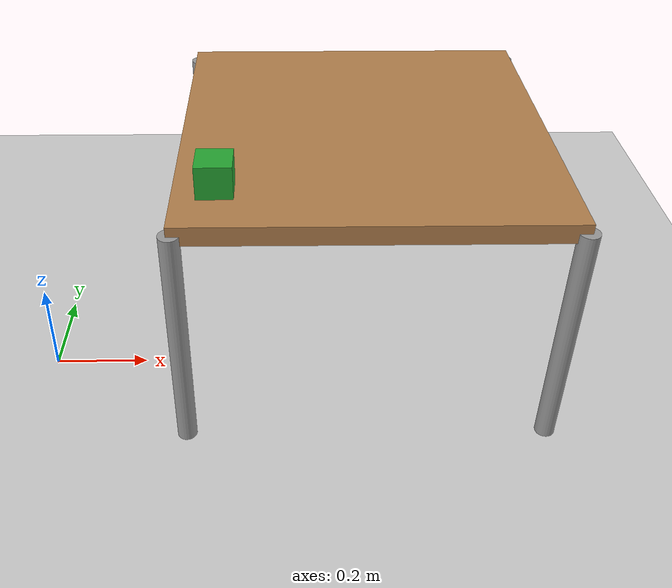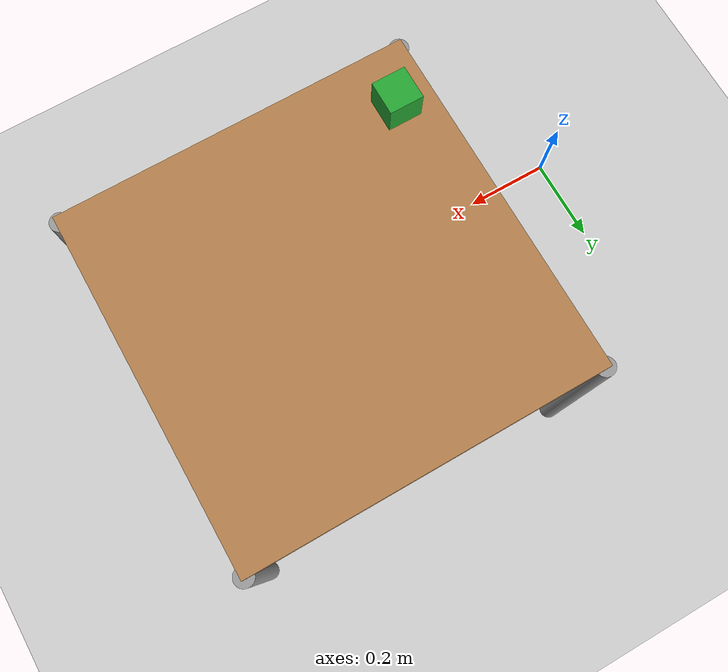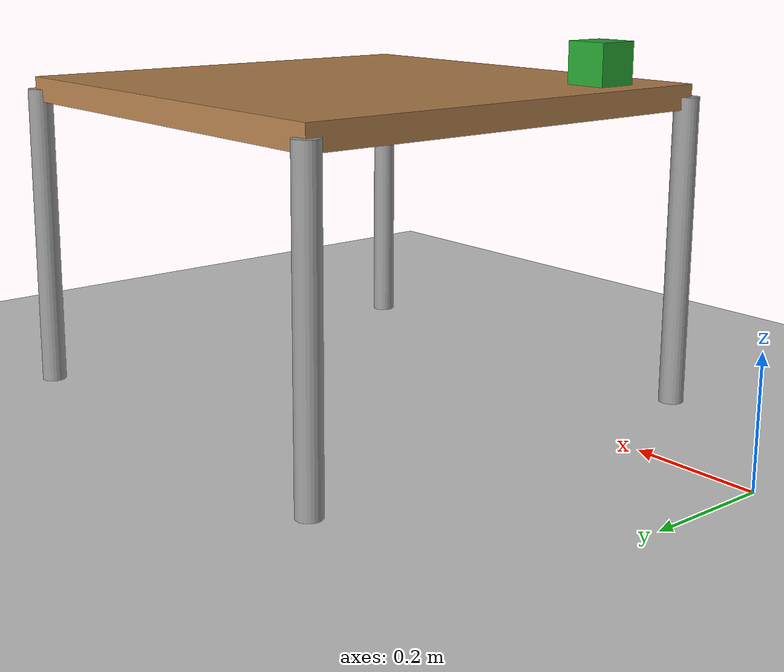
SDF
<sdf version="1.7">
 <world name="default">
  <plugin name="gazebo_ros_state" filename="libgazebo_ros_state.so"/>
  <light name="sun" type="directional">
   <pose>0 0 10 0 -0 0</pose>
   <diffuse>0.8 0.8 0.8 1</diffuse>
   <specular>0.2 0.2 0.2 1</specular>
   <attenuation>
    <range>1000</range>
    <constant>0.9</constant>
    <linear>0.01</linear>
    <quadratic>0.001</quadratic>
   </attenuation>
   <direction>-0.5 0.1 -0.9</direction>
   <spot><inner_angle>0</inner_angle><outer_angle>0</outer_angle><falloff>0</falloff></spot>
  </light>
  <model name="ground_plane">
   <static>1</static>
   <link name="link">
    <collision name="collision">
     <geometry><plane><normal>0 0 1</normal><size>100 100</size></plane></geometry>
     <surface><friction><ode><mu>100</mu><mu2>50</mu2></ode></friction></surface>
    </collision>
    <visual name="visual">
     <cast_shadows>0</cast_shadows>
     <geometry><plane><normal>0 0 1</normal><size>100 100</size></plane></geometry>
     <material>
      <script><uri>file://media/materials/scripts/gazebo.material</uri><name>Gazebo/Grey</name></script>
     </material>
    </visual>
   </link>
  </model>
  <gravity>0 0 -9.8</gravity>
  <magnetic_field>6e-06 2.3e-05 -4.2e-05</magnetic_field>
  <atmosphere type="adiabatic"/>
  <physics type="ode">
   <max_step_size>0.001</max_step_size>
   <real_time_factor>1</real_time_factor>
   <real_time_update_rate>1000</real_time_update_rate>
  </physics>
  <scene><ambient>0.4 0.4 0.4 1</ambient><background>0.7 0.7 0.7 1</background><shadows>1</shadows></scene>
  <audio><device>default</device></audio>
  <spherical_coordinates>
   <surface_model>EARTH_WGS84</surface_model>
   <latitude_deg>0</latitude_deg>
   <longitude_deg>0</longitude_deg>
   <elevation>0</elevation>
   <heading_deg>0</heading_deg>
  </spherical_coordinates>
  <model name="table">
   <static>1</static>
   <link name="link">
    <collision name="surface">
     <pose>0 0 0.5 0 -0 0</pose>
     <geometry><box><size>0.75 0.75 0.04</size></box></geometry>
    </collision>
    <visual name="visual1">
     <pose>0 0 0.5 0 -0 0</pose>
     <geometry><box><size>0.75 0.75 0.04</size></box></geometry>
     <material>
      <script><uri>file://media/materials/scripts/gazebo.material</uri><name>Gazebo/Wood</name></script>
     </material>
    </visual>
    <collision name="front_left_leg">
     <pose>0.37 0.37 0.25 0 -0 0</pose>
     <geometry><cylinder><radius>0.02</radius><length>0.5</length></cylinder></geometry>
    </collision>
    <visual name="front_left_leg">
     <pose>0.37 0.37 0.25 0 -0 0</pose>
     <geometry><cylinder><radius>0.02</radius><length>0.5</length></cylinder></geometry>
     <material>
      <script><uri>file://media/materials/scripts/gazebo.material</uri><name>Gazebo/Grey</name></script>
     </material>
    </visual>
    <collision name="front_right_leg">
     <pose>0.37 -0.37 0.25 0 -0 0</pose>
     <geometry><cylinder><radius>0.02</radius><length>0.5</length></cylinder></geometry>
    </collision>
    <visual name="front_right_leg">
     <pose>0.37 -0.37 0.25 0 -0 0</pose>
     <geometry><cylinder><radius>0.02</radius><length>0.5</length></cylinder></geometry>
     <material>
      <script><uri>file://media/materials/scripts/gazebo.material</uri><name>Gazebo/Grey</name></script>
     </material>
    </visual>
    <collision name="back_right_leg">
     <pose>-0.37 -0.37 0.25 0 -0 0</pose>
     <geometry><cylinder><radius>0.02</radius><length>0.5</length></cylinder></geometry>
    </collision>
    <visual name="back_right_leg">
     <pose>-0.37 -0.37 0.25 0 -0 0</pose>
     <geometry><cylinder><radius>0.02</radius><length>0.5</length></cylinder></geometry>
     <material>
      <script><uri>file://media/materials/scripts/gazebo.material</uri><name>Gazebo/Grey</name></script>
     </material>
    </visual>
    <collision name="back_left_leg">
     <pose>-0.37 0.37 0.25 0 -0 0</pose>
     <geometry><cylinder><radius>0.02</radius><length>0.5</length></cylinder></geometry>
    </collision>
    <visual name="back_left_leg">
     <pose>-0.37 0.37 0.25 0 -0 0</pose>
     <geometry><cylinder><radius>0.02</radius><length>0.5</length></cylinder></geometry>
     <material>
      <script><uri>file://media/materials/scripts/gazebo.material</uri><name>Gazebo/Grey</name></script>
     </material>
    </visual>
    <velocity_decay><linear>0</linear><angular>0</angular></velocity_decay>
   </link>
   <pose>0.682133 0.154868 0 0 -0 0</pose>
  </model>
  <model name="green_cube_3">
   <link name="link">
    <inertial>
     <mass>0.25</mass>
     <inertia>
      <ixx>4.167e-05</ixx>
      <ixy>0</ixy>
      <ixz>0</ixz>
      <iyy>4.167e-05</iyy>
      <iyz>0</iyz>
      <izz>4.167e-05</izz>
     </inertia>
    </inertial>
    <velocity_decay><linear>0</linear><angular>0</angular></velocity_decay>
    <visual name="visual">
     <geometry><box><size>0.07 0.07 0.07</size></box></geometry>
     <material>
      <script><uri>file://media/materials/scripts/gazebo.material</uri><name>Gazebo/Green</name></script>
      <shader type="pixel"><normal_map>__default__</normal_map></shader>
     </material>
    </visual>
    <collision name="collision">
     <geometry><box><size>0.07 0.07 0.07</size></box></geometry>
     <surface>
      <friction>
       <ode><mu>0.7</mu><mu2>0.7</mu2><fdir1>0 0 0</fdir1><slip1>0</slip1><slip2>0</slip2></ode>
       <torsional>
        <coefficient>1</coefficient>
        <patch_radius>0</patch_radius>
        <surface_radius>0</surface_radius>
        <use_patch_radius>1</use_patch_radius>
        <ode><slip>0</slip></ode>
       </torsional>
      </friction>
      <bounce><restitution_coefficient>0</restitution_coefficient><threshold>1e+06</threshold></bounce>
      <contact>
       <collide_without_contact>0</collide_without_contact>
       <collide_without_contact_bitmask>1</collide_without_contact_bitmask>
       <collide_bitmask>1</collide_bitmask>
       <ode>
        <soft_cfm>0</soft_cfm>
        <soft_erp>0.2</soft_erp>
        <kp>1e+06</kp>
        <kd>100</kd>
        <max_vel>1</max_vel>
        <min_depth>0.0025</min_depth>
       </ode>
       <bullet>
        <split_impulse>1</split_impulse>
        <split_impulse_penetration_threshold>-0.01</split_impulse_penetration_threshold>
        <soft_cfm>0</soft_cfm>
        <soft_erp>0.2</soft_erp>
        <kp>1e+06</kp>
        <kd>100</kd>
       </bullet>
      </contact>
     </surface>
    </collision>
   </link>
   <static>0</static>
   <allow_auto_disable>0</allow_auto_disable>
   <pose>0.388637 -0.097568 0.552499 -0 -0 -1e-05</pose>
  </model>
 </world>
</sdf>
